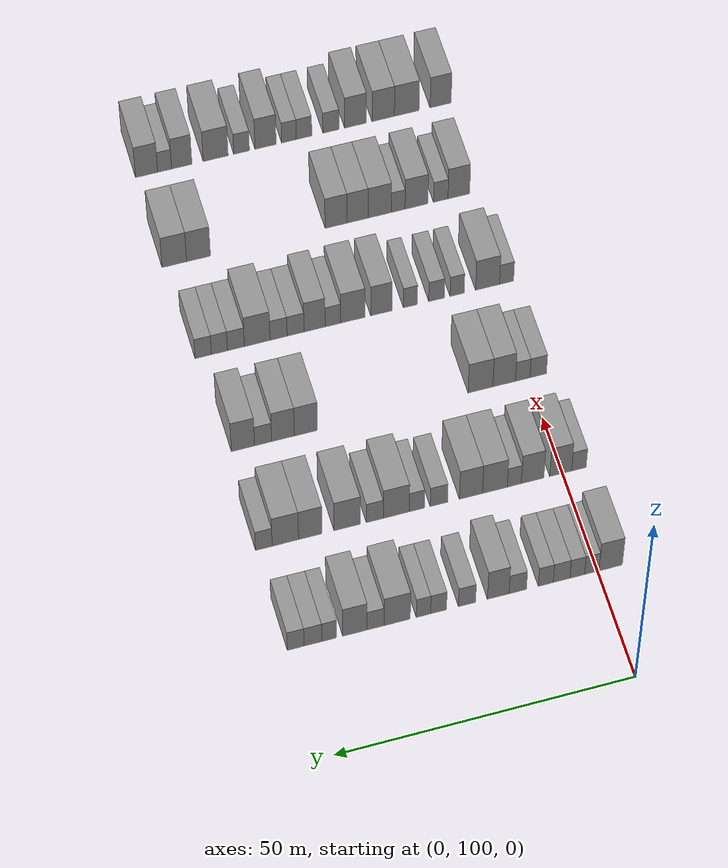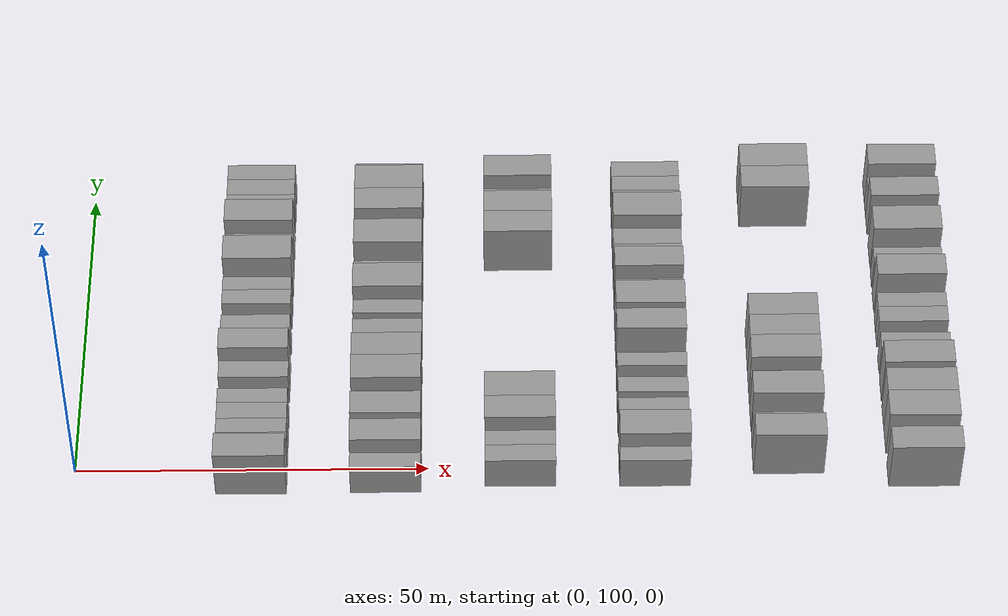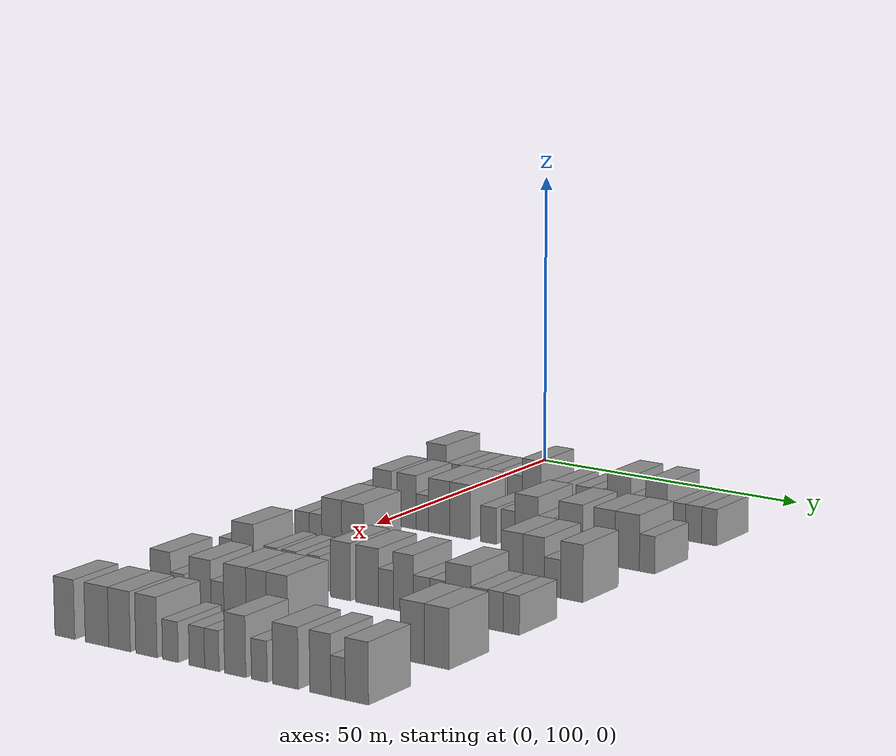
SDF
<sdf version="1.6">
 <world name="default">
  <model name="building_113">
   <static>1</static>
   <pose>25.0000 97.7942 0 0.000000 0.000000 0.000000</pose>
   <link name="link">
    <pose>0 0 4.50 0 0 0</pose>
    <collision name="collision"><geometry><box><size>10.0000 3.9705 9.0000</size></box></geometry></collision>
    <visual name="visual">
     <cast_shadows>0</cast_shadows>
     <geometry><box><size>10.0000 3.9705 9.0000</size></box></geometry>
     <material>
      <script>
       <uri>model://grey_wall/materials/scripts</uri>
       <uri>model://grey_wall/materials/textures</uri>
       <name>vrc/grey_wall</name>
      </script>
     </material>
    </visual>
   </link>
  </model>
  <model name="building_114">
   <static>1</static>
   <pose>25.0000 101.0001 0 0.000000 0.000000 0.000000</pose>
   <link name="link">
    <pose>0 0 3.00 0 0 0</pose>
    <collision name="collision"><geometry><box><size>10.0000 2.4414 6.0000</size></box></geometry></collision>
    <visual name="visual">
     <cast_shadows>0</cast_shadows>
     <geometry><box><size>10.0000 2.4414 6.0000</size></box></geometry>
     <material>
      <script>
       <uri>model://grey_wall/materials/scripts</uri>
       <uri>model://grey_wall/materials/textures</uri>
       <name>vrc/grey_wall</name>
      </script>
     </material>
    </visual>
   </link>
  </model>
  <model name="building_115">
   <static>1</static>
   <pose>25.0000 103.4690 0 0.000000 0.000000 0.000000</pose>
   <link name="link">
    <pose>0 0 3.00 0 0 0</pose>
    <collision name="collision"><geometry><box><size>10.0000 2.4964 6.0000</size></box></geometry></collision>
    <visual name="visual">
     <cast_shadows>0</cast_shadows>
     <geometry><box><size>10.0000 2.4964 6.0000</size></box></geometry>
     <material>
      <script>
       <uri>model://grey_wall/materials/scripts</uri>
       <uri>model://grey_wall/materials/textures</uri>
       <name>vrc/grey_wall</name>
      </script>
     </material>
    </visual>
   </link>
  </model>
  <model name="building_116">
   <static>1</static>
   <pose>25.0000 106.1322 0 0.000000 0.000000 0.000000</pose>
   <link name="link">
    <pose>0 0 3.00 0 0 0</pose>
    <collision name="collision"><geometry><box><size>10.0000 2.8299 6.0000</size></box></geometry></collision>
    <visual name="visual">
     <cast_shadows>0</cast_shadows>
     <geometry><box><size>10.0000 2.8299 6.0000</size></box></geometry>
     <material>
      <script>
       <uri>model://grey_wall/materials/scripts</uri>
       <uri>model://grey_wall/materials/textures</uri>
       <name>vrc/grey_wall</name>
      </script>
     </material>
    </visual>
   </link>
  </model>
  <model name="building_117">
   <static>1</static>
   <pose>25.0000 108.8115 0 0.000000 0.000000 0.000000</pose>
   <link name="link">
    <pose>0 0 3.00 0 0 0</pose>
    <collision name="collision"><geometry><box><size>10.0000 2.5289 6.0000</size></box></geometry></collision>
    <visual name="visual">
     <cast_shadows>0</cast_shadows>
     <geometry><box><size>10.0000 2.5289 6.0000</size></box></geometry>
     <material>
      <script>
       <uri>model://grey_wall/materials/scripts</uri>
       <uri>model://grey_wall/materials/textures</uri>
       <name>vrc/grey_wall</name>
      </script>
     </material>
    </visual>
   </link>
  </model>
  <model name="building_118">
   <static>1</static>
   <pose>25.0000 113.5463 0 0.000000 0.000000 0.000000</pose>
   <link name="link">
    <pose>0 0 3.00 0 0 0</pose>
    <collision name="collision"><geometry><box><size>10.0000 2.9407 6.0000</size></box></geometry></collision>
    <visual name="visual">
     <cast_shadows>0</cast_shadows>
     <geometry><box><size>10.0000 2.9407 6.0000</size></box></geometry>
     <material>
      <script>
       <uri>model://grey_wall/materials/scripts</uri>
       <uri>model://grey_wall/materials/textures</uri>
       <name>vrc/grey_wall</name>
      </script>
     </material>
    </visual>
   </link>
  </model>
  <model name="building_119">
   <static>1</static>
   <pose>25.0000 116.8375 0 0.000000 0.000000 0.000000</pose>
   <link name="link">
    <pose>0 0 4.50 0 0 0</pose>
    <collision name="collision"><geometry><box><size>10.0000 3.6418 9.0000</size></box></geometry></collision>
    <visual name="visual">
     <cast_shadows>0</cast_shadows>
     <geometry><box><size>10.0000 3.6418 9.0000</size></box></geometry>
     <material>
      <script>
       <uri>model://grey_wall/materials/scripts</uri>
       <uri>model://grey_wall/materials/textures</uri>
       <name>vrc/grey_wall</name>
      </script>
     </material>
    </visual>
   </link>
  </model>
  <model name="building_120">
   <static>1</static>
   <pose>25.0000 122.1015 0 0.000000 0.000000 0.000000</pose>
   <link name="link">
    <pose>0 0 3.00 0 0 0</pose>
    <collision name="collision"><geometry><box><size>10.0000 2.8862 6.0000</size></box></geometry></collision>
    <visual name="visual">
     <cast_shadows>0</cast_shadows>
     <geometry><box><size>10.0000 2.8862 6.0000</size></box></geometry>
     <material>
      <script>
       <uri>model://grey_wall/materials/scripts</uri>
       <uri>model://grey_wall/materials/textures</uri>
       <name>vrc/grey_wall</name>
      </script>
     </material>
    </visual>
   </link>
  </model>
  <model name="building_121">
   <static>1</static>
   <pose>25.0000 126.8779 0 0.000000 0.000000 0.000000</pose>
   <link name="link">
    <pose>0 0 3.00 0 0 0</pose>
    <collision name="collision"><geometry><box><size>10.0000 2.6665 6.0000</size></box></geometry></collision>
    <visual name="visual">
     <cast_shadows>0</cast_shadows>
     <geometry><box><size>10.0000 2.6665 6.0000</size></box></geometry>
     <material>
      <script>
       <uri>model://grey_wall/materials/scripts</uri>
       <uri>model://grey_wall/materials/textures</uri>
       <name>vrc/grey_wall</name>
      </script>
     </material>
    </visual>
   </link>
  </model>
  <model name="building_122">
   <static>1</static>
   <pose>25.0000 129.4175 0 0.000000 0.000000 0.000000</pose>
   <link name="link">
    <pose>0 0 3.00 0 0 0</pose>
    <collision name="collision"><geometry><box><size>10.0000 2.4127 6.0000</size></box></geometry></collision>
    <visual name="visual">
     <cast_shadows>0</cast_shadows>
     <geometry><box><size>10.0000 2.4127 6.0000</size></box></geometry>
     <material>
      <script>
       <uri>model://grey_wall/materials/scripts</uri>
       <uri>model://grey_wall/materials/textures</uri>
       <name>vrc/grey_wall</name>
      </script>
     </material>
    </visual>
   </link>
  </model>
  <model name="building_123">
   <static>1</static>
   <pose>25.0000 133.8257 0 0.000000 0.000000 0.000000</pose>
   <link name="link">
    <pose>0 0 4.50 0 0 0</pose>
    <collision name="collision"><geometry><box><size>10.0000 4.4037 9.0000</size></box></geometry></collision>
    <visual name="visual">
     <cast_shadows>0</cast_shadows>
     <geometry><box><size>10.0000 4.4037 9.0000</size></box></geometry>
     <material>
      <script>
       <uri>model://grey_wall/materials/scripts</uri>
       <uri>model://grey_wall/materials/textures</uri>
       <name>vrc/grey_wall</name>
      </script>
     </material>
    </visual>
   </link>
  </model>
  <model name="building_124">
   <static>1</static>
   <pose>25.0000 137.4277 0 0.000000 0.000000 0.000000</pose>
   <link name="link">
    <pose>0 0 3.00 0 0 0</pose>
    <collision name="collision"><geometry><box><size>10.0000 2.8002 6.0000</size></box></geometry></collision>
    <visual name="visual">
     <cast_shadows>0</cast_shadows>
     <geometry><box><size>10.0000 2.8002 6.0000</size></box></geometry>
     <material>
      <script>
       <uri>model://grey_wall/materials/scripts</uri>
       <uri>model://grey_wall/materials/textures</uri>
       <name>vrc/grey_wall</name>
      </script>
     </material>
    </visual>
   </link>
  </model>
  <model name="building_125">
   <static>1</static>
   <pose>25.0000 140.8701 0 0.000000 0.000000 0.000000</pose>
   <link name="link">
    <pose>0 0 4.50 0 0 0</pose>
    <collision name="collision"><geometry><box><size>10.0000 4.0845 9.0000</size></box></geometry></collision>
    <visual name="visual">
     <cast_shadows>0</cast_shadows>
     <geometry><box><size>10.0000 4.0845 9.0000</size></box></geometry>
     <material>
      <script>
       <uri>model://grey_wall/materials/scripts</uri>
       <uri>model://grey_wall/materials/textures</uri>
       <name>vrc/grey_wall</name>
      </script>
     </material>
    </visual>
   </link>
  </model>
  <model name="building_126">
   <static>1</static>
   <pose>25.0000 145.1497 0 0.000000 0.000000 0.000000</pose>
   <link name="link">
    <pose>0 0 3.00 0 0 0</pose>
    <collision name="collision"><geometry><box><size>10.0000 2.4747 6.0000</size></box></geometry></collision>
    <visual name="visual">
     <cast_shadows>0</cast_shadows>
     <geometry><box><size>10.0000 2.4747 6.0000</size></box></geometry>
     <material>
      <script>
       <uri>model://grey_wall/materials/scripts</uri>
       <uri>model://grey_wall/materials/textures</uri>
       <name>vrc/grey_wall</name>
      </script>
     </material>
    </visual>
   </link>
  </model>
  <model name="building_127">
   <static>1</static>
   <pose>25.0000 147.8683 0 0.000000 0.000000 0.000000</pose>
   <link name="link">
    <pose>0 0 3.00 0 0 0</pose>
    <collision name="collision"><geometry><box><size>10.0000 2.9626 6.0000</size></box></geometry></collision>
    <visual name="visual">
     <cast_shadows>0</cast_shadows>
     <geometry><box><size>10.0000 2.9626 6.0000</size></box></geometry>
     <material>
      <script>
       <uri>model://grey_wall/materials/scripts</uri>
       <uri>model://grey_wall/materials/textures</uri>
       <name>vrc/grey_wall</name>
      </script>
     </material>
    </visual>
   </link>
  </model>
  <model name="building_128">
   <static>1</static>
   <pose>25.0000 150.7436 0 0.000000 0.000000 0.000000</pose>
   <link name="link">
    <pose>0 0 3.00 0 0 0</pose>
    <collision name="collision"><geometry><box><size>10.0000 2.7879 6.0000</size></box></geometry></collision>
    <visual name="visual">
     <cast_shadows>0</cast_shadows>
     <geometry><box><size>10.0000 2.7879 6.0000</size></box></geometry>
     <material>
      <script>
       <uri>model://grey_wall/materials/scripts</uri>
       <uri>model://grey_wall/materials/textures</uri>
       <name>vrc/grey_wall</name>
      </script>
     </material>
    </visual>
   </link>
  </model>
  <model name="building_291">
   <static>1</static>
   <pose>44.0000 97.1938 0 0.000000 0.000000 0.000000</pose>
   <link name="link">
    <pose>0 0 3.00 0 0 0</pose>
    <collision name="collision"><geometry><box><size>10.0000 2.5091 6.0000</size></box></geometry></collision>
    <visual name="visual">
     <cast_shadows>0</cast_shadows>
     <geometry><box><size>10.0000 2.5091 6.0000</size></box></geometry>
     <material>
      <script>
       <uri>model://grey_wall/materials/scripts</uri>
       <uri>model://grey_wall/materials/textures</uri>
       <name>vrc/grey_wall</name>
      </script>
     </material>
    </visual>
   </link>
  </model>
  <model name="building_292">
   <static>1</static>
   <pose>44.0000 100.3303 0 0.000000 0.000000 0.000000</pose>
   <link name="link">
    <pose>0 0 4.50 0 0 0</pose>
    <collision name="collision"><geometry><box><size>10.0000 3.7640 9.0000</size></box></geometry></collision>
    <visual name="visual">
     <cast_shadows>0</cast_shadows>
     <geometry><box><size>10.0000 3.7640 9.0000</size></box></geometry>
     <material>
      <script>
       <uri>model://grey_wall/materials/scripts</uri>
       <uri>model://grey_wall/materials/textures</uri>
       <name>vrc/grey_wall</name>
      </script>
     </material>
    </visual>
   </link>
  </model>
  <model name="building_293">
   <static>1</static>
   <pose>44.0000 105.1509 0 0.000000 0.000000 0.000000</pose>
   <link name="link">
    <pose>0 0 4.50 0 0 0</pose>
    <collision name="collision"><geometry><box><size>10.0000 3.8773 9.0000</size></box></geometry></collision>
    <visual name="visual">
     <cast_shadows>0</cast_shadows>
     <geometry><box><size>10.0000 3.8773 9.0000</size></box></geometry>
     <material>
      <script>
       <uri>model://grey_wall/materials/scripts</uri>
       <uri>model://grey_wall/materials/textures</uri>
       <name>vrc/grey_wall</name>
      </script>
     </material>
    </visual>
   </link>
  </model>
  <model name="building_294">
   <static>1</static>
   <pose>44.0000 108.2915 0 0.000000 0.000000 0.000000</pose>
   <link name="link">
    <pose>0 0 3.00 0 0 0</pose>
    <collision name="collision"><geometry><box><size>10.0000 2.4039 6.0000</size></box></geometry></collision>
    <visual name="visual">
     <cast_shadows>0</cast_shadows>
     <geometry><box><size>10.0000 2.4039 6.0000</size></box></geometry>
     <material>
      <script>
       <uri>model://grey_wall/materials/scripts</uri>
       <uri>model://grey_wall/materials/textures</uri>
       <name>vrc/grey_wall</name>
      </script>
     </material>
    </visual>
   </link>
  </model>
  <model name="building_295">
   <static>1</static>
   <pose>44.0000 111.6051 0 0.000000 0.000000 0.000000</pose>
   <link name="link">
    <pose>0 0 4.50 0 0 0</pose>
    <collision name="collision"><geometry><box><size>10.0000 4.2231 9.0000</size></box></geometry></collision>
    <visual name="visual">
     <cast_shadows>0</cast_shadows>
     <geometry><box><size>10.0000 4.2231 9.0000</size></box></geometry>
     <material>
      <script>
       <uri>model://grey_wall/materials/scripts</uri>
       <uri>model://grey_wall/materials/textures</uri>
       <name>vrc/grey_wall</name>
      </script>
     </material>
    </visual>
   </link>
  </model>
  <model name="building_296">
   <static>1</static>
   <pose>44.0000 115.7055 0 0.000000 0.000000 0.000000</pose>
   <link name="link">
    <pose>0 0 4.50 0 0 0</pose>
    <collision name="collision"><geometry><box><size>10.0000 3.9778 9.0000</size></box></geometry></collision>
    <visual name="visual">
     <cast_shadows>0</cast_shadows>
     <geometry><box><size>10.0000 3.9778 9.0000</size></box></geometry>
     <material>
      <script>
       <uri>model://grey_wall/materials/scripts</uri>
       <uri>model://grey_wall/materials/textures</uri>
       <name>vrc/grey_wall</name>
      </script>
     </material>
    </visual>
   </link>
  </model>
  <model name="building_297">
   <static>1</static>
   <pose>44.0000 121.1790 0 0.000000 0.000000 0.000000</pose>
   <link name="link">
    <pose>0 0 3.00 0 0 0</pose>
    <collision name="collision"><geometry><box><size>10.0000 2.9692 6.0000</size></box></geometry></collision>
    <visual name="visual">
     <cast_shadows>0</cast_shadows>
     <geometry><box><size>10.0000 2.9692 6.0000</size></box></geometry>
     <material>
      <script>
       <uri>model://grey_wall/materials/scripts</uri>
       <uri>model://grey_wall/materials/textures</uri>
       <name>vrc/grey_wall</name>
      </script>
     </material>
    </visual>
   </link>
  </model>
  <model name="building_298">
   <static>1</static>
   <pose>44.0000 124.9409 0 0.000000 0.000000 0.000000</pose>
   <link name="link">
    <pose>0 0 3.00 0 0 0</pose>
    <collision name="collision"><geometry><box><size>10.0000 2.5545 6.0000</size></box></geometry></collision>
    <visual name="visual">
     <cast_shadows>0</cast_shadows>
     <geometry><box><size>10.0000 2.5545 6.0000</size></box></geometry>
     <material>
      <script>
       <uri>model://grey_wall/materials/scripts</uri>
       <uri>model://grey_wall/materials/textures</uri>
       <name>vrc/grey_wall</name>
      </script>
     </material>
    </visual>
   </link>
  </model>
  <model name="building_299">
   <static>1</static>
   <pose>44.0000 128.4243 0 0.000000 0.000000 0.000000</pose>
   <link name="link">
    <pose>0 0 4.50 0 0 0</pose>
    <collision name="collision"><geometry><box><size>10.0000 4.4123 9.0000</size></box></geometry></collision>
    <visual name="visual">
     <cast_shadows>0</cast_shadows>
     <geometry><box><size>10.0000 4.4123 9.0000</size></box></geometry>
     <material>
      <script>
       <uri>model://grey_wall/materials/scripts</uri>
       <uri>model://grey_wall/materials/textures</uri>
       <name>vrc/grey_wall</name>
      </script>
     </material>
    </visual>
   </link>
  </model>
  <model name="building_300">
   <static>1</static>
   <pose>44.0000 132.0748 0 0.000000 0.000000 0.000000</pose>
   <link name="link">
    <pose>0 0 3.00 0 0 0</pose>
    <collision name="collision"><geometry><box><size>10.0000 2.8888 6.0000</size></box></geometry></collision>
    <visual name="visual">
     <cast_shadows>0</cast_shadows>
     <geometry><box><size>10.0000 2.8888 6.0000</size></box></geometry>
     <material>
      <script>
       <uri>model://grey_wall/materials/scripts</uri>
       <uri>model://grey_wall/materials/textures</uri>
       <name>vrc/grey_wall</name>
      </script>
     </material>
    </visual>
   </link>
  </model>
  <model name="building_301">
   <static>1</static>
   <pose>44.0000 136.7576 0 0.000000 0.000000 0.000000</pose>
   <link name="link">
    <pose>0 0 4.50 0 0 0</pose>
    <collision name="collision"><geometry><box><size>10.0000 4.4769 9.0000</size></box></geometry></collision>
    <visual name="visual">
     <cast_shadows>0</cast_shadows>
     <geometry><box><size>10.0000 4.4769 9.0000</size></box></geometry>
     <material>
      <script>
       <uri>model://grey_wall/materials/scripts</uri>
       <uri>model://grey_wall/materials/textures</uri>
       <name>vrc/grey_wall</name>
      </script>
     </material>
    </visual>
   </link>
  </model>
  <model name="building_302">
   <static>1</static>
   <pose>44.0000 142.9880 0 0.000000 0.000000 0.000000</pose>
   <link name="link">
    <pose>0 0 4.50 0 0 0</pose>
    <collision name="collision"><geometry><box><size>10.0000 3.9839 9.0000</size></box></geometry></collision>
    <visual name="visual">
     <cast_shadows>0</cast_shadows>
     <geometry><box><size>10.0000 3.9839 9.0000</size></box></geometry>
     <material>
      <script>
       <uri>model://grey_wall/materials/scripts</uri>
       <uri>model://grey_wall/materials/textures</uri>
       <name>vrc/grey_wall</name>
      </script>
     </material>
    </visual>
   </link>
  </model>
  <model name="building_303">
   <static>1</static>
   <pose>44.0000 147.2025 0 0.000000 0.000000 0.000000</pose>
   <link name="link">
    <pose>0 0 4.50 0 0 0</pose>
    <collision name="collision"><geometry><box><size>10.0000 4.4451 9.0000</size></box></geometry></collision>
    <visual name="visual">
     <cast_shadows>0</cast_shadows>
     <geometry><box><size>10.0000 4.4451 9.0000</size></box></geometry>
     <material>
      <script>
       <uri>model://grey_wall/materials/scripts</uri>
       <uri>model://grey_wall/materials/textures</uri>
       <name>vrc/grey_wall</name>
      </script>
     </material>
    </visual>
   </link>
  </model>
  <model name="building_304">
   <static>1</static>
   <pose>44.0000 150.8360 0 0.000000 0.000000 0.000000</pose>
   <link name="link">
    <pose>0 0 3.00 0 0 0</pose>
    <collision name="collision"><geometry><box><size>10.0000 2.8220 6.0000</size></box></geometry></collision>
    <visual name="visual">
     <cast_shadows>0</cast_shadows>
     <geometry><box><size>10.0000 2.8220 6.0000</size></box></geometry>
     <material>
      <script>
       <uri>model://grey_wall/materials/scripts</uri>
       <uri>model://grey_wall/materials/textures</uri>
       <name>vrc/grey_wall</name>
      </script>
     </material>
    </visual>
   </link>
  </model>
  <model name="building_466">
   <static>1</static>
   <pose>63.0000 98.2830 0 0.000000 0.000000 0.000000</pose>
   <link name="link">
    <pose>0 0 3.00 0 0 0</pose>
    <collision name="collision"><geometry><box><size>10.0000 2.8636 6.0000</size></box></geometry></collision>
    <visual name="visual">
     <cast_shadows>0</cast_shadows>
     <geometry><box><size>10.0000 2.8636 6.0000</size></box></geometry>
     <material>
      <script>
       <uri>model://grey_wall/materials/scripts</uri>
       <uri>model://grey_wall/materials/textures</uri>
       <name>vrc/grey_wall</name>
      </script>
     </material>
    </visual>
   </link>
  </model>
  <model name="building_467">
   <static>1</static>
   <pose>63.0000 100.9852 0 0.000000 0.000000 0.000000</pose>
   <link name="link">
    <pose>0 0 3.00 0 0 0</pose>
    <collision name="collision"><geometry><box><size>10.0000 2.5406 6.0000</size></box></geometry></collision>
    <visual name="visual">
     <cast_shadows>0</cast_shadows>
     <geometry><box><size>10.0000 2.5406 6.0000</size></box></geometry>
     <material>
      <script>
       <uri>model://grey_wall/materials/scripts</uri>
       <uri>model://grey_wall/materials/textures</uri>
       <name>vrc/grey_wall</name>
      </script>
     </material>
    </visual>
   </link>
  </model>
  <model name="building_468">
   <static>1</static>
   <pose>63.0000 104.2088 0 0.000000 0.000000 0.000000</pose>
   <link name="link">
    <pose>0 0 4.50 0 0 0</pose>
    <collision name="collision"><geometry><box><size>10.0000 3.9067 9.0000</size></box></geometry></collision>
    <visual name="visual">
     <cast_shadows>0</cast_shadows>
     <geometry><box><size>10.0000 3.9067 9.0000</size></box></geometry>
     <material>
      <script>
       <uri>model://grey_wall/materials/scripts</uri>
       <uri>model://grey_wall/materials/textures</uri>
       <name>vrc/grey_wall</name>
      </script>
     </material>
    </visual>
   </link>
  </model>
  <model name="building_469">
   <static>1</static>
   <pose>63.0000 108.3186 0 0.000000 0.000000 0.000000</pose>
   <link name="link">
    <pose>0 0 4.50 0 0 0</pose>
    <collision name="collision"><geometry><box><size>10.0000 4.3129 9.0000</size></box></geometry></collision>
    <visual name="visual">
     <cast_shadows>0</cast_shadows>
     <geometry><box><size>10.0000 4.3129 9.0000</size></box></geometry>
     <material>
      <script>
       <uri>model://grey_wall/materials/scripts</uri>
       <uri>model://grey_wall/materials/textures</uri>
       <name>vrc/grey_wall</name>
      </script>
     </material>
    </visual>
   </link>
  </model>
  <model name="building_470">
   <static>1</static>
   <pose>63.0000 138.4273 0 0.000000 0.000000 0.000000</pose>
   <link name="link">
    <pose>0 0 4.50 0 0 0</pose>
    <collision name="collision"><geometry><box><size>10.0000 3.9682 9.0000</size></box></geometry></collision>
    <visual name="visual">
     <cast_shadows>0</cast_shadows>
     <geometry><box><size>10.0000 3.9682 9.0000</size></box></geometry>
     <material>
      <script>
       <uri>model://grey_wall/materials/scripts</uri>
       <uri>model://grey_wall/materials/textures</uri>
       <name>vrc/grey_wall</name>
      </script>
     </material>
    </visual>
   </link>
  </model>
  <model name="building_471">
   <static>1</static>
   <pose>63.0000 142.3563 0 0.000000 0.000000 0.000000</pose>
   <link name="link">
    <pose>0 0 4.50 0 0 0</pose>
    <collision name="collision"><geometry><box><size>10.0000 3.8898 9.0000</size></box></geometry></collision>
    <visual name="visual">
     <cast_shadows>0</cast_shadows>
     <geometry><box><size>10.0000 3.8898 9.0000</size></box></geometry>
     <material>
      <script>
       <uri>model://grey_wall/materials/scripts</uri>
       <uri>model://grey_wall/materials/textures</uri>
       <name>vrc/grey_wall</name>
      </script>
     </material>
    </visual>
   </link>
  </model>
  <model name="building_472">
   <static>1</static>
   <pose>63.0000 145.7611 0 0.000000 0.000000 0.000000</pose>
   <link name="link">
    <pose>0 0 3.00 0 0 0</pose>
    <collision name="collision"><geometry><box><size>10.0000 2.9198 6.0000</size></box></geometry></collision>
    <visual name="visual">
     <cast_shadows>0</cast_shadows>
     <geometry><box><size>10.0000 2.9198 6.0000</size></box></geometry>
     <material>
      <script>
       <uri>model://grey_wall/materials/scripts</uri>
       <uri>model://grey_wall/materials/textures</uri>
       <name>vrc/grey_wall</name>
      </script>
     </material>
    </visual>
   </link>
  </model>
  <model name="building_473">
   <static>1</static>
   <pose>63.0000 149.2072 0 0.000000 0.000000 0.000000</pose>
   <link name="link">
    <pose>0 0 4.50 0 0 0</pose>
    <collision name="collision"><geometry><box><size>10.0000 3.9723 9.0000</size></box></geometry></collision>
    <visual name="visual">
     <cast_shadows>0</cast_shadows>
     <geometry><box><size>10.0000 3.9723 9.0000</size></box></geometry>
     <material>
      <script>
       <uri>model://grey_wall/materials/scripts</uri>
       <uri>model://grey_wall/materials/textures</uri>
       <name>vrc/grey_wall</name>
      </script>
     </material>
    </visual>
   </link>
  </model>
  <model name="building_637">
   <static>1</static>
   <pose>82.0000 97.9746 0 0.000000 0.000000 0.000000</pose>
   <link name="link">
    <pose>0 0 3.00 0 0 0</pose>
    <collision name="collision"><geometry><box><size>10.0000 2.4712 6.0000</size></box></geometry></collision>
    <visual name="visual">
     <cast_shadows>0</cast_shadows>
     <geometry><box><size>10.0000 2.4712 6.0000</size></box></geometry>
     <material>
      <script>
       <uri>model://grey_wall/materials/scripts</uri>
       <uri>model://grey_wall/materials/textures</uri>
       <name>vrc/grey_wall</name>
      </script>
     </material>
    </visual>
   </link>
  </model>
  <model name="building_638">
   <static>1</static>
   <pose>82.0000 101.3281 0 0.000000 0.000000 0.000000</pose>
   <link name="link">
    <pose>0 0 4.50 0 0 0</pose>
    <collision name="collision"><geometry><box><size>10.0000 4.2358 9.0000</size></box></geometry></collision>
    <visual name="visual">
     <cast_shadows>0</cast_shadows>
     <geometry><box><size>10.0000 4.2358 9.0000</size></box></geometry>
     <material>
      <script>
       <uri>model://grey_wall/materials/scripts</uri>
       <uri>model://grey_wall/materials/textures</uri>
       <name>vrc/grey_wall</name>
      </script>
     </material>
    </visual>
   </link>
  </model>
  <model name="building_639">
   <static>1</static>
   <pose>82.0000 106.6912 0 0.000000 0.000000 0.000000</pose>
   <link name="link">
    <pose>0 0 3.00 0 0 0</pose>
    <collision name="collision"><geometry><box><size>10.0000 2.4903 6.0000</size></box></geometry></collision>
    <visual name="visual">
     <cast_shadows>0</cast_shadows>
     <geometry><box><size>10.0000 2.4903 6.0000</size></box></geometry>
     <material>
      <script>
       <uri>model://grey_wall/materials/scripts</uri>
       <uri>model://grey_wall/materials/textures</uri>
       <name>vrc/grey_wall</name>
      </script>
     </material>
    </visual>
   </link>
  </model>
  <model name="building_640">
   <static>1</static>
   <pose>82.0000 110.3034 0 0.000000 0.000000 0.000000</pose>
   <link name="link">
    <pose>0 0 3.00 0 0 0</pose>
    <collision name="collision"><geometry><box><size>10.0000 2.7342 6.0000</size></box></geometry></collision>
    <visual name="visual">
     <cast_shadows>0</cast_shadows>
     <geometry><box><size>10.0000 2.7342 6.0000</size></box></geometry>
     <material>
      <script>
       <uri>model://grey_wall/materials/scripts</uri>
       <uri>model://grey_wall/materials/textures</uri>
       <name>vrc/grey_wall</name>
      </script>
     </material>
    </visual>
   </link>
  </model>
  <model name="building_641">
   <static>1</static>
   <pose>82.0000 114.8970 0 0.000000 0.000000 0.000000</pose>
   <link name="link">
    <pose>0 0 3.00 0 0 0</pose>
    <collision name="collision"><geometry><box><size>10.0000 2.4531 6.0000</size></box></geometry></collision>
    <visual name="visual">
     <cast_shadows>0</cast_shadows>
     <geometry><box><size>10.0000 2.4531 6.0000</size></box></geometry>
     <material>
      <script>
       <uri>model://grey_wall/materials/scripts</uri>
       <uri>model://grey_wall/materials/textures</uri>
       <name>vrc/grey_wall</name>
      </script>
     </material>
    </visual>
   </link>
  </model>
  <model name="building_642">
   <static>1</static>
   <pose>82.0000 119.9865 0 0.000000 0.000000 0.000000</pose>
   <link name="link">
    <pose>0 0 4.50 0 0 0</pose>
    <collision name="collision"><geometry><box><size>10.0000 3.7260 9.0000</size></box></geometry></collision>
    <visual name="visual">
     <cast_shadows>0</cast_shadows>
     <geometry><box><size>10.0000 3.7260 9.0000</size></box></geometry>
     <material>
      <script>
       <uri>model://grey_wall/materials/scripts</uri>
       <uri>model://grey_wall/materials/textures</uri>
       <name>vrc/grey_wall</name>
      </script>
     </material>
    </visual>
   </link>
  </model>
  <model name="building_643">
   <static>1</static>
   <pose>82.0000 124.9624 0 0.000000 0.000000 0.000000</pose>
   <link name="link">
    <pose>0 0 4.50 0 0 0</pose>
    <collision name="collision"><geometry><box><size>10.0000 4.2258 9.0000</size></box></geometry></collision>
    <visual name="visual">
     <cast_shadows>0</cast_shadows>
     <geometry><box><size>10.0000 4.2258 9.0000</size></box></geometry>
     <material>
      <script>
       <uri>model://grey_wall/materials/scripts</uri>
       <uri>model://grey_wall/materials/textures</uri>
       <name>vrc/grey_wall</name>
      </script>
     </material>
    </visual>
   </link>
  </model>
  <model name="building_644">
   <static>1</static>
   <pose>82.0000 128.4296 0 0.000000 0.000000 0.000000</pose>
   <link name="link">
    <pose>0 0 3.00 0 0 0</pose>
    <collision name="collision"><geometry><box><size>10.0000 2.7086 6.0000</size></box></geometry></collision>
    <visual name="visual">
     <cast_shadows>0</cast_shadows>
     <geometry><box><size>10.0000 2.7086 6.0000</size></box></geometry>
     <material>
      <script>
       <uri>model://grey_wall/materials/scripts</uri>
       <uri>model://grey_wall/materials/textures</uri>
       <name>vrc/grey_wall</name>
      </script>
     </material>
    </visual>
   </link>
  </model>
  <model name="building_645">
   <static>1</static>
   <pose>82.0000 131.6183 0 0.000000 0.000000 0.000000</pose>
   <link name="link">
    <pose>0 0 4.50 0 0 0</pose>
    <collision name="collision"><geometry><box><size>10.0000 3.6688 9.0000</size></box></geometry></collision>
    <visual name="visual">
     <cast_shadows>0</cast_shadows>
     <geometry><box><size>10.0000 3.6688 9.0000</size></box></geometry>
     <material>
      <script>
       <uri>model://grey_wall/materials/scripts</uri>
       <uri>model://grey_wall/materials/textures</uri>
       <name>vrc/grey_wall</name>
      </script>
     </material>
    </visual>
   </link>
  </model>
  <model name="building_646">
   <static>1</static>
   <pose>82.0000 134.9226 0 0.000000 0.000000 0.000000</pose>
   <link name="link">
    <pose>0 0 3.00 0 0 0</pose>
    <collision name="collision"><geometry><box><size>10.0000 2.9398 6.0000</size></box></geometry></collision>
    <visual name="visual">
     <cast_shadows>0</cast_shadows>
     <geometry><box><size>10.0000 2.9398 6.0000</size></box></geometry>
     <material>
      <script>
       <uri>model://grey_wall/materials/scripts</uri>
       <uri>model://grey_wall/materials/textures</uri>
       <name>vrc/grey_wall</name>
      </script>
     </material>
    </visual>
   </link>
  </model>
  <model name="building_647">
   <static>1</static>
   <pose>82.0000 137.8732 0 0.000000 0.000000 0.000000</pose>
   <link name="link">
    <pose>0 0 3.00 0 0 0</pose>
    <collision name="collision"><geometry><box><size>10.0000 2.9614 6.0000</size></box></geometry></collision>
    <visual name="visual">
     <cast_shadows>0</cast_shadows>
     <geometry><box><size>10.0000 2.9614 6.0000</size></box></geometry>
     <material>
      <script>
       <uri>model://grey_wall/materials/scripts</uri>
       <uri>model://grey_wall/materials/textures</uri>
       <name>vrc/grey_wall</name>
      </script>
     </material>
    </visual>
   </link>
  </model>
  <model name="building_648">
   <static>1</static>
   <pose>82.0000 141.5845 0 0.000000 0.000000 0.000000</pose>
   <link name="link">
    <pose>0 0 4.50 0 0 0</pose>
    <collision name="collision"><geometry><box><size>10.0000 4.4611 9.0000</size></box></geometry></collision>
    <visual name="visual">
     <cast_shadows>0</cast_shadows>
     <geometry><box><size>10.0000 4.4611 9.0000</size></box></geometry>
     <material>
      <script>
       <uri>model://grey_wall/materials/scripts</uri>
       <uri>model://grey_wall/materials/textures</uri>
       <name>vrc/grey_wall</name>
      </script>
     </material>
    </visual>
   </link>
  </model>
  <model name="building_649">
   <static>1</static>
   <pose>82.0000 145.2765 0 0.000000 0.000000 0.000000</pose>
   <link name="link">
    <pose>0 0 3.00 0 0 0</pose>
    <collision name="collision"><geometry><box><size>10.0000 2.9230 6.0000</size></box></geometry></collision>
    <visual name="visual">
     <cast_shadows>0</cast_shadows>
     <geometry><box><size>10.0000 2.9230 6.0000</size></box></geometry>
     <material>
      <script>
       <uri>model://grey_wall/materials/scripts</uri>
       <uri>model://grey_wall/materials/textures</uri>
       <name>vrc/grey_wall</name>
      </script>
     </material>
    </visual>
   </link>
  </model>
  <model name="building_650">
   <static>1</static>
   <pose>82.0000 148.1192 0 0.000000 0.000000 0.000000</pose>
   <link name="link">
    <pose>0 0 3.00 0 0 0</pose>
    <collision name="collision"><geometry><box><size>10.0000 2.7626 6.0000</size></box></geometry></collision>
    <visual name="visual">
     <cast_shadows>0</cast_shadows>
     <geometry><box><size>10.0000 2.7626 6.0000</size></box></geometry>
     <material>
      <script>
       <uri>model://grey_wall/materials/scripts</uri>
       <uri>model://grey_wall/materials/textures</uri>
       <name>vrc/grey_wall</name>
      </script>
     </material>
    </visual>
   </link>
  </model>
  <model name="building_651">
   <static>1</static>
   <pose>82.0000 150.9292 0 0.000000 0.000000 0.000000</pose>
   <link name="link">
    <pose>0 0 3.00 0 0 0</pose>
    <collision name="collision"><geometry><box><size>10.0000 2.8573 6.0000</size></box></geometry></collision>
    <visual name="visual">
     <cast_shadows>0</cast_shadows>
     <geometry><box><size>10.0000 2.8573 6.0000</size></box></geometry>
     <material>
      <script>
       <uri>model://grey_wall/materials/scripts</uri>
       <uri>model://grey_wall/materials/textures</uri>
       <name>vrc/grey_wall</name>
      </script>
     </material>
    </visual>
   </link>
  </model>
  <model name="building_819">
   <static>1</static>
   <pose>101.0000 100.6982 0 0.000000 0.000000 0.000000</pose>
   <link name="link">
    <pose>0 0 4.50 0 0 0</pose>
    <collision name="collision"><geometry><box><size>10.0000 3.8678 9.0000</size></box></geometry></collision>
    <visual name="visual">
     <cast_shadows>0</cast_shadows>
     <geometry><box><size>10.0000 3.8678 9.0000</size></box></geometry>
     <material>
      <script>
       <uri>model://grey_wall/materials/scripts</uri>
       <uri>model://grey_wall/materials/textures</uri>
       <name>vrc/grey_wall</name>
      </script>
     </material>
    </visual>
   </link>
  </model>
  <model name="building_820">
   <static>1</static>
   <pose>101.0000 103.9191 0 0.000000 0.000000 0.000000</pose>
   <link name="link">
    <pose>0 0 3.00 0 0 0</pose>
    <collision name="collision"><geometry><box><size>10.0000 2.5741 6.0000</size></box></geometry></collision>
    <visual name="visual">
     <cast_shadows>0</cast_shadows>
     <geometry><box><size>10.0000 2.5741 6.0000</size></box></geometry>
     <material>
      <script>
       <uri>model://grey_wall/materials/scripts</uri>
       <uri>model://grey_wall/materials/textures</uri>
       <name>vrc/grey_wall</name>
      </script>
     </material>
    </visual>
   </link>
  </model>
  <model name="building_821">
   <static>1</static>
   <pose>101.0000 108.2430 0 0.000000 0.000000 0.000000</pose>
   <link name="link">
    <pose>0 0 4.50 0 0 0</pose>
    <collision name="collision"><geometry><box><size>10.0000 4.0737 9.0000</size></box></geometry></collision>
    <visual name="visual">
     <cast_shadows>0</cast_shadows>
     <geometry><box><size>10.0000 4.0737 9.0000</size></box></geometry>
     <material>
      <script>
       <uri>model://grey_wall/materials/scripts</uri>
       <uri>model://grey_wall/materials/textures</uri>
       <name>vrc/grey_wall</name>
      </script>
     </material>
    </visual>
   </link>
  </model>
  <model name="building_822">
   <static>1</static>
   <pose>101.0000 111.4806 0 0.000000 0.000000 0.000000</pose>
   <link name="link">
    <pose>0 0 3.00 0 0 0</pose>
    <collision name="collision"><geometry><box><size>10.0000 2.4013 6.0000</size></box></geometry></collision>
    <visual name="visual">
     <cast_shadows>0</cast_shadows>
     <geometry><box><size>10.0000 2.4013 6.0000</size></box></geometry>
     <material>
      <script>
       <uri>model://grey_wall/materials/scripts</uri>
       <uri>model://grey_wall/materials/textures</uri>
       <name>vrc/grey_wall</name>
      </script>
     </material>
    </visual>
   </link>
  </model>
  <model name="building_823">
   <static>1</static>
   <pose>101.0000 114.7687 0 0.000000 0.000000 0.000000</pose>
   <link name="link">
    <pose>0 0 4.50 0 0 0</pose>
    <collision name="collision"><geometry><box><size>10.0000 4.1750 9.0000</size></box></geometry></collision>
    <visual name="visual">
     <cast_shadows>0</cast_shadows>
     <geometry><box><size>10.0000 4.1750 9.0000</size></box></geometry>
     <material>
      <script>
       <uri>model://grey_wall/materials/scripts</uri>
       <uri>model://grey_wall/materials/textures</uri>
       <name>vrc/grey_wall</name>
      </script>
     </material>
    </visual>
   </link>
  </model>
  <model name="building_824">
   <static>1</static>
   <pose>101.0000 118.7078 0 0.000000 0.000000 0.000000</pose>
   <link name="link">
    <pose>0 0 4.50 0 0 0</pose>
    <collision name="collision"><geometry><box><size>10.0000 3.7032 9.0000</size></box></geometry></collision>
    <visual name="visual">
     <cast_shadows>0</cast_shadows>
     <geometry><box><size>10.0000 3.7032 9.0000</size></box></geometry>
     <material>
      <script>
       <uri>model://grey_wall/materials/scripts</uri>
       <uri>model://grey_wall/materials/textures</uri>
       <name>vrc/grey_wall</name>
      </script>
     </material>
    </visual>
   </link>
  </model>
  <model name="building_825">
   <static>1</static>
   <pose>101.0000 122.5035 0 0.000000 0.000000 0.000000</pose>
   <link name="link">
    <pose>0 0 4.50 0 0 0</pose>
    <collision name="collision"><geometry><box><size>10.0000 3.8883 9.0000</size></box></geometry></collision>
    <visual name="visual">
     <cast_shadows>0</cast_shadows>
     <geometry><box><size>10.0000 3.8883 9.0000</size></box></geometry>
     <material>
      <script>
       <uri>model://grey_wall/materials/scripts</uri>
       <uri>model://grey_wall/materials/textures</uri>
       <name>vrc/grey_wall</name>
      </script>
     </material>
    </visual>
   </link>
  </model>
  <model name="building_826">
   <static>1</static>
   <pose>101.0000 146.7134 0 0.000000 0.000000 0.000000</pose>
   <link name="link">
    <pose>0 0 4.50 0 0 0</pose>
    <collision name="collision"><geometry><box><size>10.0000 4.1771 9.0000</size></box></geometry></collision>
    <visual name="visual">
     <cast_shadows>0</cast_shadows>
     <geometry><box><size>10.0000 4.1771 9.0000</size></box></geometry>
     <material>
      <script>
       <uri>model://grey_wall/materials/scripts</uri>
       <uri>model://grey_wall/materials/textures</uri>
       <name>vrc/grey_wall</name>
      </script>
     </material>
    </visual>
   </link>
  </model>
  <model name="building_827">
   <static>1</static>
   <pose>101.0000 150.9550 0 0.000000 0.000000 0.000000</pose>
   <link name="link">
    <pose>0 0 4.50 0 0 0</pose>
    <collision name="collision"><geometry><box><size>10.0000 4.3060 9.0000</size></box></geometry></collision>
    <visual name="visual">
     <cast_shadows>0</cast_shadows>
     <geometry><box><size>10.0000 4.3060 9.0000</size></box></geometry>
     <material>
      <script>
       <uri>model://grey_wall/materials/scripts</uri>
       <uri>model://grey_wall/materials/textures</uri>
       <name>vrc/grey_wall</name>
      </script>
     </material>
    </visual>
   </link>
  </model>
  <model name="building_989">
   <static>1</static>
   <pose>120.0000 98.2940 0 0.000000 0.000000 0.000000</pose>
   <link name="link">
    <pose>0 0 4.50 0 0 0</pose>
    <collision name="collision"><geometry><box><size>10.0000 3.8000 9.0000</size></box></geometry></collision>
    <visual name="visual">
     <cast_shadows>0</cast_shadows>
     <geometry><box><size>10.0000 3.8000 9.0000</size></box></geometry>
     <material>
      <script>
       <uri>model://grey_wall/materials/scripts</uri>
       <uri>model://grey_wall/materials/textures</uri>
       <name>vrc/grey_wall</name>
      </script>
     </material>
    </visual>
   </link>
  </model>
  <model name="building_990">
   <static>1</static>
   <pose>120.0000 104.4135 0 0.000000 0.000000 0.000000</pose>
   <link name="link">
    <pose>0 0 4.50 0 0 0</pose>
    <collision name="collision"><geometry><box><size>10.0000 4.4390 9.0000</size></box></geometry></collision>
    <visual name="visual">
     <cast_shadows>0</cast_shadows>
     <geometry><box><size>10.0000 4.4390 9.0000</size></box></geometry>
     <material>
      <script>
       <uri>model://grey_wall/materials/scripts</uri>
       <uri>model://grey_wall/materials/textures</uri>
       <name>vrc/grey_wall</name>
      </script>
     </material>
    </visual>
   </link>
  </model>
  <model name="building_991">
   <static>1</static>
   <pose>120.0000 108.6508 0 0.000000 0.000000 0.000000</pose>
   <link name="link">
    <pose>0 0 4.50 0 0 0</pose>
    <collision name="collision"><geometry><box><size>10.0000 4.0355 9.0000</size></box></geometry></collision>
    <visual name="visual">
     <cast_shadows>0</cast_shadows>
     <geometry><box><size>10.0000 4.0355 9.0000</size></box></geometry>
     <material>
      <script>
       <uri>model://grey_wall/materials/scripts</uri>
       <uri>model://grey_wall/materials/textures</uri>
       <name>vrc/grey_wall</name>
      </script>
     </material>
    </visual>
   </link>
  </model>
  <model name="building_992">
   <static>1</static>
   <pose>120.0000 113.6361 0 0.000000 0.000000 0.000000</pose>
   <link name="link">
    <pose>0 0 4.50 0 0 0</pose>
    <collision name="collision"><geometry><box><size>10.0000 3.9352 9.0000</size></box></geometry></collision>
    <visual name="visual">
     <cast_shadows>0</cast_shadows>
     <geometry><box><size>10.0000 3.9352 9.0000</size></box></geometry>
     <material>
      <script>
       <uri>model://grey_wall/materials/scripts</uri>
       <uri>model://grey_wall/materials/textures</uri>
       <name>vrc/grey_wall</name>
      </script>
     </material>
    </visual>
   </link>
  </model>
  <model name="building_993">
   <static>1</static>
   <pose>120.0000 118.0402 0 0.000000 0.000000 0.000000</pose>
   <link name="link">
    <pose>0 0 3.00 0 0 0</pose>
    <collision name="collision"><geometry><box><size>10.0000 2.8728 6.0000</size></box></geometry></collision>
    <visual name="visual">
     <cast_shadows>0</cast_shadows>
     <geometry><box><size>10.0000 2.8728 6.0000</size></box></geometry>
     <material>
      <script>
       <uri>model://grey_wall/materials/scripts</uri>
       <uri>model://grey_wall/materials/textures</uri>
       <name>vrc/grey_wall</name>
      </script>
     </material>
    </visual>
   </link>
  </model>
  <model name="building_994">
   <static>1</static>
   <pose>120.0000 122.8713 0 0.000000 0.000000 0.000000</pose>
   <link name="link">
    <pose>0 0 3.00 0 0 0</pose>
    <collision name="collision"><geometry><box><size>10.0000 2.7894 6.0000</size></box></geometry></collision>
    <visual name="visual">
     <cast_shadows>0</cast_shadows>
     <geometry><box><size>10.0000 2.7894 6.0000</size></box></geometry>
     <material>
      <script>
       <uri>model://grey_wall/materials/scripts</uri>
       <uri>model://grey_wall/materials/textures</uri>
       <name>vrc/grey_wall</name>
      </script>
     </material>
    </visual>
   </link>
  </model>
  <model name="building_995">
   <static>1</static>
   <pose>120.0000 125.5626 0 0.000000 0.000000 0.000000</pose>
   <link name="link">
    <pose>0 0 3.00 0 0 0</pose>
    <collision name="collision"><geometry><box><size>10.0000 2.5933 6.0000</size></box></geometry></collision>
    <visual name="visual">
     <cast_shadows>0</cast_shadows>
     <geometry><box><size>10.0000 2.5933 6.0000</size></box></geometry>
     <material>
      <script>
       <uri>model://grey_wall/materials/scripts</uri>
       <uri>model://grey_wall/materials/textures</uri>
       <name>vrc/grey_wall</name>
      </script>
     </material>
    </visual>
   </link>
  </model>
  <model name="building_996">
   <static>1</static>
   <pose>120.0000 129.7447 0 0.000000 0.000000 0.000000</pose>
   <link name="link">
    <pose>0 0 4.50 0 0 0</pose>
    <collision name="collision"><geometry><box><size>10.0000 3.7709 9.0000</size></box></geometry></collision>
    <visual name="visual">
     <cast_shadows>0</cast_shadows>
     <geometry><box><size>10.0000 3.7709 9.0000</size></box></geometry>
     <material>
      <script>
       <uri>model://grey_wall/materials/scripts</uri>
       <uri>model://grey_wall/materials/textures</uri>
       <name>vrc/grey_wall</name>
      </script>
     </material>
    </visual>
   </link>
  </model>
  <model name="building_997">
   <static>1</static>
   <pose>120.0000 134.0260 0 0.000000 0.000000 0.000000</pose>
   <link name="link">
    <pose>0 0 3.00 0 0 0</pose>
    <collision name="collision"><geometry><box><size>10.0000 2.7918 6.0000</size></box></geometry></collision>
    <visual name="visual">
     <cast_shadows>0</cast_shadows>
     <geometry><box><size>10.0000 2.7918 6.0000</size></box></geometry>
     <material>
      <script>
       <uri>model://grey_wall/materials/scripts</uri>
       <uri>model://grey_wall/materials/textures</uri>
       <name>vrc/grey_wall</name>
      </script>
     </material>
    </visual>
   </link>
  </model>
  <model name="building_998">
   <static>1</static>
   <pose>120.0000 138.6402 0 0.000000 0.000000 0.000000</pose>
   <link name="link">
    <pose>0 0 4.50 0 0 0</pose>
    <collision name="collision"><geometry><box><size>10.0000 4.4365 9.0000</size></box></geometry></collision>
    <visual name="visual">
     <cast_shadows>0</cast_shadows>
     <geometry><box><size>10.0000 4.4365 9.0000</size></box></geometry>
     <material>
      <script>
       <uri>model://grey_wall/materials/scripts</uri>
       <uri>model://grey_wall/materials/textures</uri>
       <name>vrc/grey_wall</name>
      </script>
     </material>
    </visual>
   </link>
  </model>
  <model name="building_999">
   <static>1</static>
   <pose>120.0000 144.6614 0 0.000000 0.000000 0.000000</pose>
   <link name="link">
    <pose>0 0 4.50 0 0 0</pose>
    <collision name="collision"><geometry><box><size>10.0000 3.6059 9.0000</size></box></geometry></collision>
    <visual name="visual">
     <cast_shadows>0</cast_shadows>
     <geometry><box><size>10.0000 3.6059 9.0000</size></box></geometry>
     <material>
      <script>
       <uri>model://grey_wall/materials/scripts</uri>
       <uri>model://grey_wall/materials/textures</uri>
       <name>vrc/grey_wall</name>
      </script>
     </material>
    </visual>
   </link>
  </model>
  <model name="building_1000">
   <static>1</static>
   <pose>120.0000 147.7013 0 0.000000 0.000000 0.000000</pose>
   <link name="link">
    <pose>0 0 3.00 0 0 0</pose>
    <collision name="collision"><geometry><box><size>10.0000 2.4739 6.0000</size></box></geometry></collision>
    <visual name="visual">
     <cast_shadows>0</cast_shadows>
     <geometry><box><size>10.0000 2.4739 6.0000</size></box></geometry>
     <material>
      <script>
       <uri>model://grey_wall/materials/scripts</uri>
       <uri>model://grey_wall/materials/textures</uri>
       <name>vrc/grey_wall</name>
      </script>
     </material>
    </visual>
   </link>
  </model>
  <model name="building_1001">
   <static>1</static>
   <pose>120.0000 150.9055 0 0.000000 0.000000 0.000000</pose>
   <link name="link">
    <pose>0 0 4.50 0 0 0</pose>
    <collision name="collision"><geometry><box><size>10.0000 3.9346 9.0000</size></box></geometry></collision>
    <visual name="visual">
     <cast_shadows>0</cast_shadows>
     <geometry><box><size>10.0000 3.9346 9.0000</size></box></geometry>
     <material>
      <script>
       <uri>model://grey_wall/materials/scripts</uri>
       <uri>model://grey_wall/materials/textures</uri>
       <name>vrc/grey_wall</name>
      </script>
     </material>
    </visual>
   </link>
  </model>
 </world>
</sdf>
